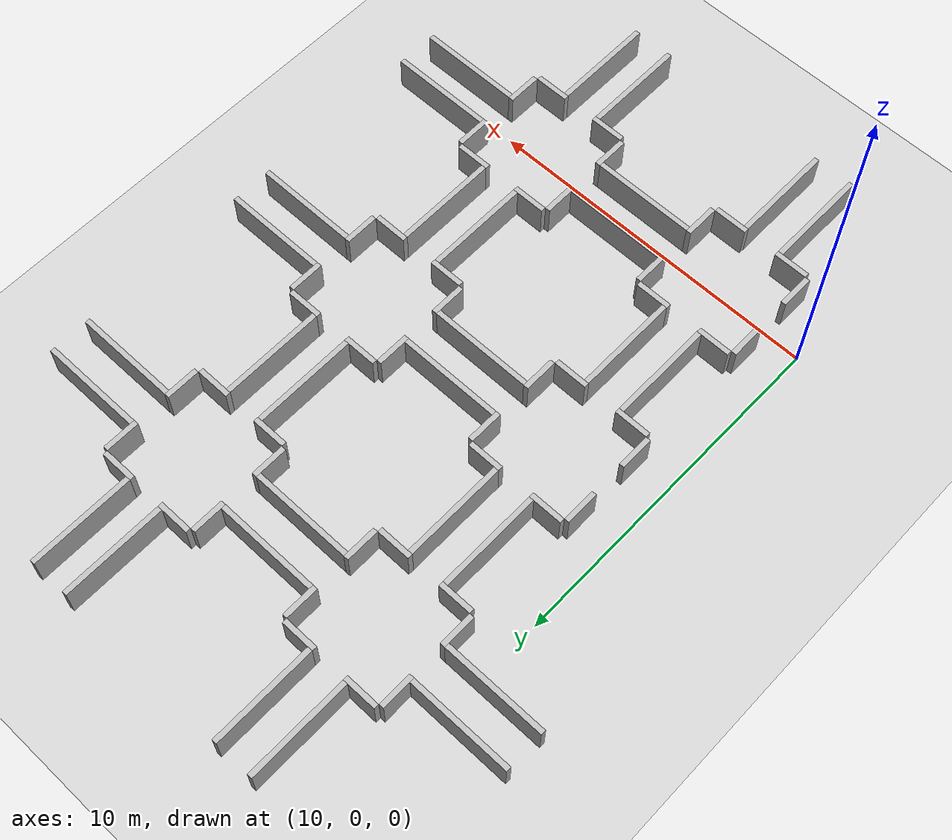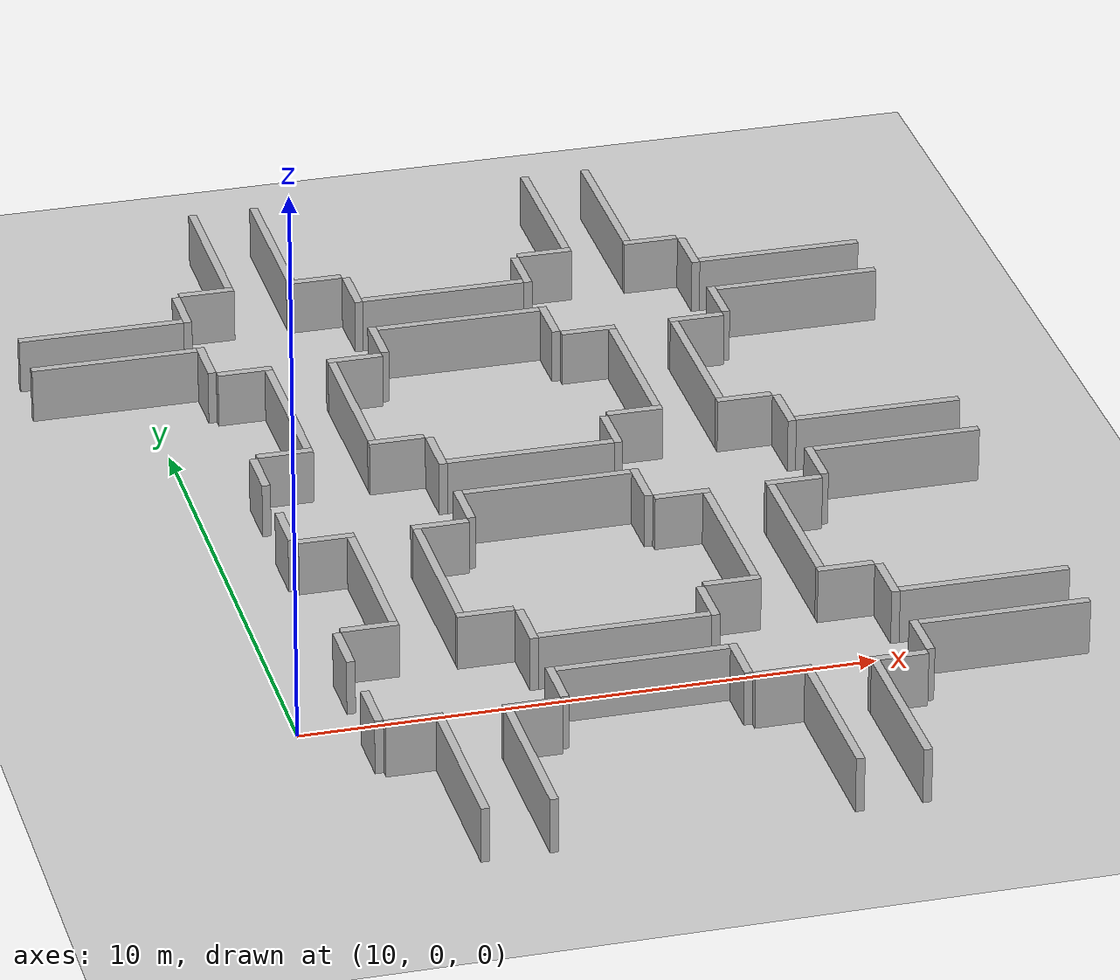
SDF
<sdf version="1.4">
 <world name="scenario 1">
  <include><uri>model://ground_plane</uri></include>
  <include><uri>model://sun</uri></include>
  <model name="roomWall_532">
   <pose>11.025 -1 0 0 0 0</pose>
   <static>true</static>
   <link name="box">
    <pose>0 0 0.5 0 0 0</pose>
    <collision name="collision"><geometry><box><size>0.15 1 1</size></box></geometry></collision>
    <visual name="visual"><geometry><box><size>0.15 1 1</size></box></geometry></visual>
   </link>
  </model>
  <model name="roomWall_784">
   <pose>11.025 1 0 0 0 0</pose>
   <static>true</static>
   <link name="box">
    <pose>0 0 0.5 0 0 0</pose>
    <collision name="collision"><geometry><box><size>0.15 1 1</size></box></geometry></collision>
    <visual name="visual"><geometry><box><size>0.15 1 1</size></box></geometry></visual>
   </link>
  </model>
  <model name="roomWall_889">
   <pose>11.6 1.575 0 0 0 0</pose>
   <static>true</static>
   <link name="box">
    <pose>0 0 0.5 0 0 1.5707963267948966</pose>
    <collision name="collision"><geometry><box><size>0.15 1 1</size></box></geometry></collision>
    <visual name="visual"><geometry><box><size>0.15 1 1</size></box></geometry></visual>
   </link>
  </model>
  <model name="roomWall_632">
   <pose>13.6 1.575 0 0 0 0</pose>
   <static>true</static>
   <link name="box">
    <pose>0 0 0.5 0 0 1.5707963267948966</pose>
    <collision name="collision"><geometry><box><size>0.15 1 1</size></box></geometry></collision>
    <visual name="visual"><geometry><box><size>0.15 1 1</size></box></geometry></visual>
   </link>
  </model>
  <model name="roomWall_27">
   <pose>14.174999999999999 1 0 0 0 0</pose>
   <static>true</static>
   <link name="box">
    <pose>0 0 0.5 0 0 0</pose>
    <collision name="collision"><geometry><box><size>0.15 1 1</size></box></geometry></collision>
    <visual name="visual"><geometry><box><size>0.15 1 1</size></box></geometry></visual>
   </link>
  </model>
  <model name="roomWall_56">
   <pose>14.174999999999999 -1 0 0 0 0</pose>
   <static>true</static>
   <link name="box">
    <pose>0 0 0.5 0 0 0</pose>
    <collision name="collision"><geometry><box><size>0.15 1 1</size></box></geometry></collision>
    <visual name="visual"><geometry><box><size>0.15 1 1</size></box></geometry></visual>
   </link>
  </model>
  <model name="roomWall_852">
   <pose>13.6 -1.575 0 0 0 0</pose>
   <static>true</static>
   <link name="box">
    <pose>0 0 0.5 0 0 1.5707963267948966</pose>
    <collision name="collision"><geometry><box><size>0.15 1 1</size></box></geometry></collision>
    <visual name="visual"><geometry><box><size>0.15 1 1</size></box></geometry></visual>
   </link>
  </model>
  <model name="roomWall_742">
   <pose>11.6 -1.575 0 0 0 0</pose>
   <static>true</static>
   <link name="box">
    <pose>0 0 0.5 0 0 1.5707963267948966</pose>
    <collision name="collision"><geometry><box><size>0.15 1 1</size></box></geometry></collision>
    <visual name="visual"><geometry><box><size>0.15 1 1</size></box></geometry></visual>
   </link>
  </model>
  <model name="roomWall_869">
   <pose>11.025 5.3 0 0 0 0</pose>
   <static>true</static>
   <link name="box">
    <pose>0 0 0.5 0 0 0</pose>
    <collision name="collision"><geometry><box><size>0.15 1 1</size></box></geometry></collision>
    <visual name="visual"><geometry><box><size>0.15 1 1</size></box></geometry></visual>
   </link>
  </model>
  <model name="roomWall_185">
   <pose>11.025 7.3 0 0 0 0</pose>
   <static>true</static>
   <link name="box">
    <pose>0 0 0.5 0 0 0</pose>
    <collision name="collision"><geometry><box><size>0.15 1 1</size></box></geometry></collision>
    <visual name="visual"><geometry><box><size>0.15 1 1</size></box></geometry></visual>
   </link>
  </model>
  <model name="roomWall_298">
   <pose>11.6 7.875 0 0 0 0</pose>
   <static>true</static>
   <link name="box">
    <pose>0 0 0.5 0 0 1.5707963267948966</pose>
    <collision name="collision"><geometry><box><size>0.15 1 1</size></box></geometry></collision>
    <visual name="visual"><geometry><box><size>0.15 1 1</size></box></geometry></visual>
   </link>
  </model>
  <model name="roomWall_204">
   <pose>13.6 7.875 0 0 0 0</pose>
   <static>true</static>
   <link name="box">
    <pose>0 0 0.5 0 0 1.5707963267948966</pose>
    <collision name="collision"><geometry><box><size>0.15 1 1</size></box></geometry></collision>
    <visual name="visual"><geometry><box><size>0.15 1 1</size></box></geometry></visual>
   </link>
  </model>
  <model name="roomWall_406">
   <pose>14.174999999999999 7.3 0 0 0 0</pose>
   <static>true</static>
   <link name="box">
    <pose>0 0 0.5 0 0 0</pose>
    <collision name="collision"><geometry><box><size>0.15 1 1</size></box></geometry></collision>
    <visual name="visual"><geometry><box><size>0.15 1 1</size></box></geometry></visual>
   </link>
  </model>
  <model name="roomWall_71">
   <pose>14.174999999999999 5.3 0 0 0 0</pose>
   <static>true</static>
   <link name="box">
    <pose>0 0 0.5 0 0 0</pose>
    <collision name="collision"><geometry><box><size>0.15 1 1</size></box></geometry></collision>
    <visual name="visual"><geometry><box><size>0.15 1 1</size></box></geometry></visual>
   </link>
  </model>
  <model name="roomWall_103">
   <pose>13.6 4.725 0 0 0 0</pose>
   <static>true</static>
   <link name="box">
    <pose>0 0 0.5 0 0 1.5707963267948966</pose>
    <collision name="collision"><geometry><box><size>0.15 1 1</size></box></geometry></collision>
    <visual name="visual"><geometry><box><size>0.15 1 1</size></box></geometry></visual>
   </link>
  </model>
  <model name="roomWall_449">
   <pose>11.6 4.725 0 0 0 0</pose>
   <static>true</static>
   <link name="box">
    <pose>0 0 0.5 0 0 1.5707963267948966</pose>
    <collision name="collision"><geometry><box><size>0.15 1 1</size></box></geometry></collision>
    <visual name="visual"><geometry><box><size>0.15 1 1</size></box></geometry></visual>
   </link>
  </model>
  <model name="roomWall_806">
   <pose>11.025 11.6 0 0 0 0</pose>
   <static>true</static>
   <link name="box">
    <pose>0 0 0.5 0 0 0</pose>
    <collision name="collision"><geometry><box><size>0.15 1 1</size></box></geometry></collision>
    <visual name="visual"><geometry><box><size>0.15 1 1</size></box></geometry></visual>
   </link>
  </model>
  <model name="roomWall_867">
   <pose>11.025 13.6 0 0 0 0</pose>
   <static>true</static>
   <link name="box">
    <pose>0 0 0.5 0 0 0</pose>
    <collision name="collision"><geometry><box><size>0.15 1 1</size></box></geometry></collision>
    <visual name="visual"><geometry><box><size>0.15 1 1</size></box></geometry></visual>
   </link>
  </model>
  <model name="roomWall_806">
   <pose>11.6 14.174999999999999 0 0 0 0</pose>
   <static>true</static>
   <link name="box">
    <pose>0 0 0.5 0 0 1.5707963267948966</pose>
    <collision name="collision"><geometry><box><size>0.15 1 1</size></box></geometry></collision>
    <visual name="visual"><geometry><box><size>0.15 1 1</size></box></geometry></visual>
   </link>
  </model>
  <model name="roomWall_937">
   <pose>13.6 14.174999999999999 0 0 0 0</pose>
   <static>true</static>
   <link name="box">
    <pose>0 0 0.5 0 0 1.5707963267948966</pose>
    <collision name="collision"><geometry><box><size>0.15 1 1</size></box></geometry></collision>
    <visual name="visual"><geometry><box><size>0.15 1 1</size></box></geometry></visual>
   </link>
  </model>
  <model name="roomWall_221">
   <pose>14.174999999999999 13.6 0 0 0 0</pose>
   <static>true</static>
   <link name="box">
    <pose>0 0 0.5 0 0 0</pose>
    <collision name="collision"><geometry><box><size>0.15 1 1</size></box></geometry></collision>
    <visual name="visual"><geometry><box><size>0.15 1 1</size></box></geometry></visual>
   </link>
  </model>
  <model name="roomWall_485">
   <pose>14.174999999999999 11.6 0 0 0 0</pose>
   <static>true</static>
   <link name="box">
    <pose>0 0 0.5 0 0 0</pose>
    <collision name="collision"><geometry><box><size>0.15 1 1</size></box></geometry></collision>
    <visual name="visual"><geometry><box><size>0.15 1 1</size></box></geometry></visual>
   </link>
  </model>
  <model name="roomWall_293">
   <pose>13.6 11.025 0 0 0 0</pose>
   <static>true</static>
   <link name="box">
    <pose>0 0 0.5 0 0 1.5707963267948966</pose>
    <collision name="collision"><geometry><box><size>0.15 1 1</size></box></geometry></collision>
    <visual name="visual"><geometry><box><size>0.15 1 1</size></box></geometry></visual>
   </link>
  </model>
  <model name="roomWall_310">
   <pose>11.6 11.025 0 0 0 0</pose>
   <static>true</static>
   <link name="box">
    <pose>0 0 0.5 0 0 1.5707963267948966</pose>
    <collision name="collision"><geometry><box><size>0.15 1 1</size></box></geometry></collision>
    <visual name="visual"><geometry><box><size>0.15 1 1</size></box></geometry></visual>
   </link>
  </model>
  <model name="roomWall_378">
   <pose>17.325 -1 0 0 0 0</pose>
   <static>true</static>
   <link name="box">
    <pose>0 0 0.5 0 0 0</pose>
    <collision name="collision"><geometry><box><size>0.15 1 1</size></box></geometry></collision>
    <visual name="visual"><geometry><box><size>0.15 1 1</size></box></geometry></visual>
   </link>
  </model>
  <model name="roomWall_814">
   <pose>17.325 1 0 0 0 0</pose>
   <static>true</static>
   <link name="box">
    <pose>0 0 0.5 0 0 0</pose>
    <collision name="collision"><geometry><box><size>0.15 1 1</size></box></geometry></collision>
    <visual name="visual"><geometry><box><size>0.15 1 1</size></box></geometry></visual>
   </link>
  </model>
  <model name="roomWall_842">
   <pose>17.9 1.575 0 0 0 0</pose>
   <static>true</static>
   <link name="box">
    <pose>0 0 0.5 0 0 1.5707963267948966</pose>
    <collision name="collision"><geometry><box><size>0.15 1 1</size></box></geometry></collision>
    <visual name="visual"><geometry><box><size>0.15 1 1</size></box></geometry></visual>
   </link>
  </model>
  <model name="roomWall_587">
   <pose>19.9 1.575 0 0 0 0</pose>
   <static>true</static>
   <link name="box">
    <pose>0 0 0.5 0 0 1.5707963267948966</pose>
    <collision name="collision"><geometry><box><size>0.15 1 1</size></box></geometry></collision>
    <visual name="visual"><geometry><box><size>0.15 1 1</size></box></geometry></visual>
   </link>
  </model>
  <model name="roomWall_148">
   <pose>20.474999999999998 1 0 0 0 0</pose>
   <static>true</static>
   <link name="box">
    <pose>0 0 0.5 0 0 0</pose>
    <collision name="collision"><geometry><box><size>0.15 1 1</size></box></geometry></collision>
    <visual name="visual"><geometry><box><size>0.15 1 1</size></box></geometry></visual>
   </link>
  </model>
  <model name="roomWall_278">
   <pose>20.474999999999998 -1 0 0 0 0</pose>
   <static>true</static>
   <link name="box">
    <pose>0 0 0.5 0 0 0</pose>
    <collision name="collision"><geometry><box><size>0.15 1 1</size></box></geometry></collision>
    <visual name="visual"><geometry><box><size>0.15 1 1</size></box></geometry></visual>
   </link>
  </model>
  <model name="roomWall_474">
   <pose>19.9 -1.575 0 0 0 0</pose>
   <static>true</static>
   <link name="box">
    <pose>0 0 0.5 0 0 1.5707963267948966</pose>
    <collision name="collision"><geometry><box><size>0.15 1 1</size></box></geometry></collision>
    <visual name="visual"><geometry><box><size>0.15 1 1</size></box></geometry></visual>
   </link>
  </model>
  <model name="roomWall_156">
   <pose>17.9 -1.575 0 0 0 0</pose>
   <static>true</static>
   <link name="box">
    <pose>0 0 0.5 0 0 1.5707963267948966</pose>
    <collision name="collision"><geometry><box><size>0.15 1 1</size></box></geometry></collision>
    <visual name="visual"><geometry><box><size>0.15 1 1</size></box></geometry></visual>
   </link>
  </model>
  <model name="roomWall_154">
   <pose>17.325 5.3 0 0 0 0</pose>
   <static>true</static>
   <link name="box">
    <pose>0 0 0.5 0 0 0</pose>
    <collision name="collision"><geometry><box><size>0.15 1 1</size></box></geometry></collision>
    <visual name="visual"><geometry><box><size>0.15 1 1</size></box></geometry></visual>
   </link>
  </model>
  <model name="roomWall_948">
   <pose>17.325 7.3 0 0 0 0</pose>
   <static>true</static>
   <link name="box">
    <pose>0 0 0.5 0 0 0</pose>
    <collision name="collision"><geometry><box><size>0.15 1 1</size></box></geometry></collision>
    <visual name="visual"><geometry><box><size>0.15 1 1</size></box></geometry></visual>
   </link>
  </model>
  <model name="roomWall_617">
   <pose>17.9 7.875 0 0 0 0</pose>
   <static>true</static>
   <link name="box">
    <pose>0 0 0.5 0 0 1.5707963267948966</pose>
    <collision name="collision"><geometry><box><size>0.15 1 1</size></box></geometry></collision>
    <visual name="visual"><geometry><box><size>0.15 1 1</size></box></geometry></visual>
   </link>
  </model>
  <model name="roomWall_642">
   <pose>19.9 7.875 0 0 0 0</pose>
   <static>true</static>
   <link name="box">
    <pose>0 0 0.5 0 0 1.5707963267948966</pose>
    <collision name="collision"><geometry><box><size>0.15 1 1</size></box></geometry></collision>
    <visual name="visual"><geometry><box><size>0.15 1 1</size></box></geometry></visual>
   </link>
  </model>
  <model name="roomWall_912">
   <pose>20.474999999999998 7.3 0 0 0 0</pose>
   <static>true</static>
   <link name="box">
    <pose>0 0 0.5 0 0 0</pose>
    <collision name="collision"><geometry><box><size>0.15 1 1</size></box></geometry></collision>
    <visual name="visual"><geometry><box><size>0.15 1 1</size></box></geometry></visual>
   </link>
  </model>
  <model name="roomWall_448">
   <pose>20.474999999999998 5.3 0 0 0 0</pose>
   <static>true</static>
   <link name="box">
    <pose>0 0 0.5 0 0 0</pose>
    <collision name="collision"><geometry><box><size>0.15 1 1</size></box></geometry></collision>
    <visual name="visual"><geometry><box><size>0.15 1 1</size></box></geometry></visual>
   </link>
  </model>
  <model name="roomWall_224">
   <pose>19.9 4.725 0 0 0 0</pose>
   <static>true</static>
   <link name="box">
    <pose>0 0 0.5 0 0 1.5707963267948966</pose>
    <collision name="collision"><geometry><box><size>0.15 1 1</size></box></geometry></collision>
    <visual name="visual"><geometry><box><size>0.15 1 1</size></box></geometry></visual>
   </link>
  </model>
  <model name="roomWall_302">
   <pose>17.9 4.725 0 0 0 0</pose>
   <static>true</static>
   <link name="box">
    <pose>0 0 0.5 0 0 1.5707963267948966</pose>
    <collision name="collision"><geometry><box><size>0.15 1 1</size></box></geometry></collision>
    <visual name="visual"><geometry><box><size>0.15 1 1</size></box></geometry></visual>
   </link>
  </model>
  <model name="roomWall_637">
   <pose>17.325 11.6 0 0 0 0</pose>
   <static>true</static>
   <link name="box">
    <pose>0 0 0.5 0 0 0</pose>
    <collision name="collision"><geometry><box><size>0.15 1 1</size></box></geometry></collision>
    <visual name="visual"><geometry><box><size>0.15 1 1</size></box></geometry></visual>
   </link>
  </model>
  <model name="roomWall_24">
   <pose>17.325 13.6 0 0 0 0</pose>
   <static>true</static>
   <link name="box">
    <pose>0 0 0.5 0 0 0</pose>
    <collision name="collision"><geometry><box><size>0.15 1 1</size></box></geometry></collision>
    <visual name="visual"><geometry><box><size>0.15 1 1</size></box></geometry></visual>
   </link>
  </model>
  <model name="roomWall_206">
   <pose>17.9 14.174999999999999 0 0 0 0</pose>
   <static>true</static>
   <link name="box">
    <pose>0 0 0.5 0 0 1.5707963267948966</pose>
    <collision name="collision"><geometry><box><size>0.15 1 1</size></box></geometry></collision>
    <visual name="visual"><geometry><box><size>0.15 1 1</size></box></geometry></visual>
   </link>
  </model>
  <model name="roomWall_835">
   <pose>19.9 14.174999999999999 0 0 0 0</pose>
   <static>true</static>
   <link name="box">
    <pose>0 0 0.5 0 0 1.5707963267948966</pose>
    <collision name="collision"><geometry><box><size>0.15 1 1</size></box></geometry></collision>
    <visual name="visual"><geometry><box><size>0.15 1 1</size></box></geometry></visual>
   </link>
  </model>
  <model name="roomWall_943">
   <pose>20.474999999999998 13.6 0 0 0 0</pose>
   <static>true</static>
   <link name="box">
    <pose>0 0 0.5 0 0 0</pose>
    <collision name="collision"><geometry><box><size>0.15 1 1</size></box></geometry></collision>
    <visual name="visual"><geometry><box><size>0.15 1 1</size></box></geometry></visual>
   </link>
  </model>
  <model name="roomWall_656">
   <pose>20.474999999999998 11.6 0 0 0 0</pose>
   <static>true</static>
   <link name="box">
    <pose>0 0 0.5 0 0 0</pose>
    <collision name="collision"><geometry><box><size>0.15 1 1</size></box></geometry></collision>
    <visual name="visual"><geometry><box><size>0.15 1 1</size></box></geometry></visual>
   </link>
  </model>
  <model name="roomWall_485">
   <pose>19.9 11.025 0 0 0 0</pose>
   <static>true</static>
   <link name="box">
    <pose>0 0 0.5 0 0 1.5707963267948966</pose>
    <collision name="collision"><geometry><box><size>0.15 1 1</size></box></geometry></collision>
    <visual name="visual"><geometry><box><size>0.15 1 1</size></box></geometry></visual>
   </link>
  </model>
  <model name="roomWall_818">
   <pose>17.9 11.025 0 0 0 0</pose>
   <static>true</static>
   <link name="box">
    <pose>0 0 0.5 0 0 1.5707963267948966</pose>
    <collision name="collision"><geometry><box><size>0.15 1 1</size></box></geometry></collision>
    <visual name="visual"><geometry><box><size>0.15 1 1</size></box></geometry></visual>
   </link>
  </model>
  <model name="roomWall_285">
   <pose>9.45 13.174999999999999 0 0 0 0</pose>
   <static>true</static>
   <link name="box">
    <pose>0 0 0.5 0 0 1.5707963267948966</pose>
    <collision name="collision"><geometry><box><size>0.15 3 1</size></box></geometry></collision>
    <visual name="visual"><geometry><box><size>0.15 3 1</size></box></geometry></visual>
   </link>
  </model>
  <model name="roomWall_429">
   <pose>9.45 12.025 0 0 0 0</pose>
   <static>true</static>
   <link name="box">
    <pose>0 0 0.5 0 0 1.5707963267948966</pose>
    <collision name="collision"><geometry><box><size>0.15 3 1</size></box></geometry></collision>
    <visual name="visual"><geometry><box><size>0.15 3 1</size></box></geometry></visual>
   </link>
  </model>
  <model name="roomWall_573">
   <pose>12.025 3.15 0 0 0 0</pose>
   <static>true</static>
   <link name="box">
    <pose>0 0 0.5 0 0 0</pose>
    <collision name="collision"><geometry><box><size>0.15 3 1</size></box></geometry></collision>
    <visual name="visual"><geometry><box><size>0.15 3 1</size></box></geometry></visual>
   </link>
  </model>
  <model name="roomWall_427">
   <pose>13.174999999999999 3.15 0 0 0 0</pose>
   <static>true</static>
   <link name="box">
    <pose>0 0 0.5 0 0 0</pose>
    <collision name="collision"><geometry><box><size>0.15 3 1</size></box></geometry></collision>
    <visual name="visual"><geometry><box><size>0.15 3 1</size></box></geometry></visual>
   </link>
  </model>
  <model name="roomWall_240">
   <pose>15.75 0.575 0 0 0 0</pose>
   <static>true</static>
   <link name="box">
    <pose>0 0 0.5 0 0 1.5707963267948966</pose>
    <collision name="collision"><geometry><box><size>0.15 3 1</size></box></geometry></collision>
    <visual name="visual"><geometry><box><size>0.15 3 1</size></box></geometry></visual>
   </link>
  </model>
  <model name="roomWall_831">
   <pose>15.75 -0.575 0 0 0 0</pose>
   <static>true</static>
   <link name="box">
    <pose>0 0 0.5 0 0 1.5707963267948966</pose>
    <collision name="collision"><geometry><box><size>0.15 3 1</size></box></geometry></collision>
    <visual name="visual"><geometry><box><size>0.15 3 1</size></box></geometry></visual>
   </link>
  </model>
  <model name="roomWall_186">
   <pose>13.174999999999999 -3.15 0 0 0 0</pose>
   <static>true</static>
   <link name="box">
    <pose>0 0 0.5 0 0 0</pose>
    <collision name="collision"><geometry><box><size>0.15 3 1</size></box></geometry></collision>
    <visual name="visual"><geometry><box><size>0.15 3 1</size></box></geometry></visual>
   </link>
  </model>
  <model name="roomWall_321">
   <pose>12.025 -3.15 0 0 0 0</pose>
   <static>true</static>
   <link name="box">
    <pose>0 0 0.5 0 0 0</pose>
    <collision name="collision"><geometry><box><size>0.15 3 1</size></box></geometry></collision>
    <visual name="visual"><geometry><box><size>0.15 3 1</size></box></geometry></visual>
   </link>
  </model>
  <model name="roomWall_474">
   <pose>12.025 9.45 0 0 0 0</pose>
   <static>true</static>
   <link name="box">
    <pose>0 0 0.5 0 0 0</pose>
    <collision name="collision"><geometry><box><size>0.15 3 1</size></box></geometry></collision>
    <visual name="visual"><geometry><box><size>0.15 3 1</size></box></geometry></visual>
   </link>
  </model>
  <model name="roomWall_265">
   <pose>13.174999999999999 9.45 0 0 0 0</pose>
   <static>true</static>
   <link name="box">
    <pose>0 0 0.5 0 0 0</pose>
    <collision name="collision"><geometry><box><size>0.15 3 1</size></box></geometry></collision>
    <visual name="visual"><geometry><box><size>0.15 3 1</size></box></geometry></visual>
   </link>
  </model>
  <model name="roomWall_123">
   <pose>15.75 6.875 0 0 0 0</pose>
   <static>true</static>
   <link name="box">
    <pose>0 0 0.5 0 0 1.5707963267948966</pose>
    <collision name="collision"><geometry><box><size>0.15 3 1</size></box></geometry></collision>
    <visual name="visual"><geometry><box><size>0.15 3 1</size></box></geometry></visual>
   </link>
  </model>
  <model name="roomWall_596">
   <pose>15.75 5.725 0 0 0 0</pose>
   <static>true</static>
   <link name="box">
    <pose>0 0 0.5 0 0 1.5707963267948966</pose>
    <collision name="collision"><geometry><box><size>0.15 3 1</size></box></geometry></collision>
    <visual name="visual"><geometry><box><size>0.15 3 1</size></box></geometry></visual>
   </link>
  </model>
  <model name="roomWall_428">
   <pose>12.025 15.75 0 0 0 0</pose>
   <static>true</static>
   <link name="box">
    <pose>0 0 0.5 0 0 0</pose>
    <collision name="collision"><geometry><box><size>0.15 3 1</size></box></geometry></collision>
    <visual name="visual"><geometry><box><size>0.15 3 1</size></box></geometry></visual>
   </link>
  </model>
  <model name="roomWall_737">
   <pose>13.174999999999999 15.75 0 0 0 0</pose>
   <static>true</static>
   <link name="box">
    <pose>0 0 0.5 0 0 0</pose>
    <collision name="collision"><geometry><box><size>0.15 3 1</size></box></geometry></collision>
    <visual name="visual"><geometry><box><size>0.15 3 1</size></box></geometry></visual>
   </link>
  </model>
  <model name="roomWall_169">
   <pose>15.75 13.174999999999999 0 0 0 0</pose>
   <static>true</static>
   <link name="box">
    <pose>0 0 0.5 0 0 1.5707963267948966</pose>
    <collision name="collision"><geometry><box><size>0.15 3 1</size></box></geometry></collision>
    <visual name="visual"><geometry><box><size>0.15 3 1</size></box></geometry></visual>
   </link>
  </model>
  <model name="roomWall_990">
   <pose>15.75 12.025 0 0 0 0</pose>
   <static>true</static>
   <link name="box">
    <pose>0 0 0.5 0 0 1.5707963267948966</pose>
    <collision name="collision"><geometry><box><size>0.15 3 1</size></box></geometry></collision>
    <visual name="visual"><geometry><box><size>0.15 3 1</size></box></geometry></visual>
   </link>
  </model>
  <model name="roomWall_229">
   <pose>18.325 3.15 0 0 0 0</pose>
   <static>true</static>
   <link name="box">
    <pose>0 0 0.5 0 0 0</pose>
    <collision name="collision"><geometry><box><size>0.15 3 1</size></box></geometry></collision>
    <visual name="visual"><geometry><box><size>0.15 3 1</size></box></geometry></visual>
   </link>
  </model>
  <model name="roomWall_959">
   <pose>19.474999999999998 3.15 0 0 0 0</pose>
   <static>true</static>
   <link name="box">
    <pose>0 0 0.5 0 0 0</pose>
    <collision name="collision"><geometry><box><size>0.15 3 1</size></box></geometry></collision>
    <visual name="visual"><geometry><box><size>0.15 3 1</size></box></geometry></visual>
   </link>
  </model>
  <model name="roomWall_894">
   <pose>22.049999999999997 0.575 0 0 0 0</pose>
   <static>true</static>
   <link name="box">
    <pose>0 0 0.5 0 0 1.5707963267948966</pose>
    <collision name="collision"><geometry><box><size>0.15 3 1</size></box></geometry></collision>
    <visual name="visual"><geometry><box><size>0.15 3 1</size></box></geometry></visual>
   </link>
  </model>
  <model name="roomWall_542">
   <pose>22.049999999999997 -0.575 0 0 0 0</pose>
   <static>true</static>
   <link name="box">
    <pose>0 0 0.5 0 0 1.5707963267948966</pose>
    <collision name="collision"><geometry><box><size>0.15 3 1</size></box></geometry></collision>
    <visual name="visual"><geometry><box><size>0.15 3 1</size></box></geometry></visual>
   </link>
  </model>
  <model name="roomWall_488">
   <pose>19.474999999999998 -3.15 0 0 0 0</pose>
   <static>true</static>
   <link name="box">
    <pose>0 0 0.5 0 0 0</pose>
    <collision name="collision"><geometry><box><size>0.15 3 1</size></box></geometry></collision>
    <visual name="visual"><geometry><box><size>0.15 3 1</size></box></geometry></visual>
   </link>
  </model>
  <model name="roomWall_197">
   <pose>18.325 -3.15 0 0 0 0</pose>
   <static>true</static>
   <link name="box">
    <pose>0 0 0.5 0 0 0</pose>
    <collision name="collision"><geometry><box><size>0.15 3 1</size></box></geometry></collision>
    <visual name="visual"><geometry><box><size>0.15 3 1</size></box></geometry></visual>
   </link>
  </model>
  <model name="roomWall_422">
   <pose>18.325 9.45 0 0 0 0</pose>
   <static>true</static>
   <link name="box">
    <pose>0 0 0.5 0 0 0</pose>
    <collision name="collision"><geometry><box><size>0.15 3 1</size></box></geometry></collision>
    <visual name="visual"><geometry><box><size>0.15 3 1</size></box></geometry></visual>
   </link>
  </model>
  <model name="roomWall_472">
   <pose>19.474999999999998 9.45 0 0 0 0</pose>
   <static>true</static>
   <link name="box">
    <pose>0 0 0.5 0 0 0</pose>
    <collision name="collision"><geometry><box><size>0.15 3 1</size></box></geometry></collision>
    <visual name="visual"><geometry><box><size>0.15 3 1</size></box></geometry></visual>
   </link>
  </model>
  <model name="roomWall_635">
   <pose>22.049999999999997 6.875 0 0 0 0</pose>
   <static>true</static>
   <link name="box">
    <pose>0 0 0.5 0 0 1.5707963267948966</pose>
    <collision name="collision"><geometry><box><size>0.15 3 1</size></box></geometry></collision>
    <visual name="visual"><geometry><box><size>0.15 3 1</size></box></geometry></visual>
   </link>
  </model>
  <model name="roomWall_452">
   <pose>22.049999999999997 5.725 0 0 0 0</pose>
   <static>true</static>
   <link name="box">
    <pose>0 0 0.5 0 0 1.5707963267948966</pose>
    <collision name="collision"><geometry><box><size>0.15 3 1</size></box></geometry></collision>
    <visual name="visual"><geometry><box><size>0.15 3 1</size></box></geometry></visual>
   </link>
  </model>
  <model name="roomWall_354">
   <pose>18.325 15.75 0 0 0 0</pose>
   <static>true</static>
   <link name="box">
    <pose>0 0 0.5 0 0 0</pose>
    <collision name="collision"><geometry><box><size>0.15 3 1</size></box></geometry></collision>
    <visual name="visual"><geometry><box><size>0.15 3 1</size></box></geometry></visual>
   </link>
  </model>
  <model name="roomWall_43">
   <pose>19.474999999999998 15.75 0 0 0 0</pose>
   <static>true</static>
   <link name="box">
    <pose>0 0 0.5 0 0 0</pose>
    <collision name="collision"><geometry><box><size>0.15 3 1</size></box></geometry></collision>
    <visual name="visual"><geometry><box><size>0.15 3 1</size></box></geometry></visual>
   </link>
  </model>
  <model name="roomWall_967">
   <pose>22.049999999999997 13.174999999999999 0 0 0 0</pose>
   <static>true</static>
   <link name="box">
    <pose>0 0 0.5 0 0 1.5707963267948966</pose>
    <collision name="collision"><geometry><box><size>0.15 3 1</size></box></geometry></collision>
    <visual name="visual"><geometry><box><size>0.15 3 1</size></box></geometry></visual>
   </link>
  </model>
  <model name="roomWall_387">
   <pose>22.049999999999997 12.025 0 0 0 0</pose>
   <static>true</static>
   <link name="box">
    <pose>0 0 0.5 0 0 1.5707963267948966</pose>
    <collision name="collision"><geometry><box><size>0.15 3 1</size></box></geometry></collision>
    <visual name="visual"><geometry><box><size>0.15 3 1</size></box></geometry></visual>
   </link>
  </model>
 </world>
</sdf>
